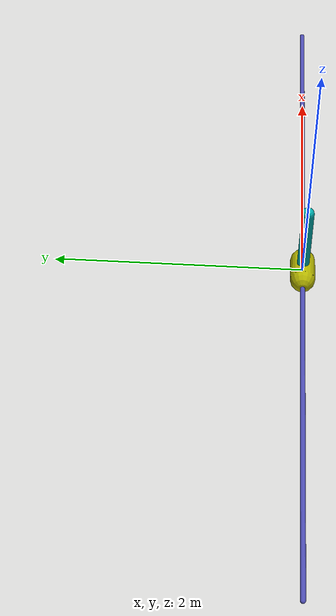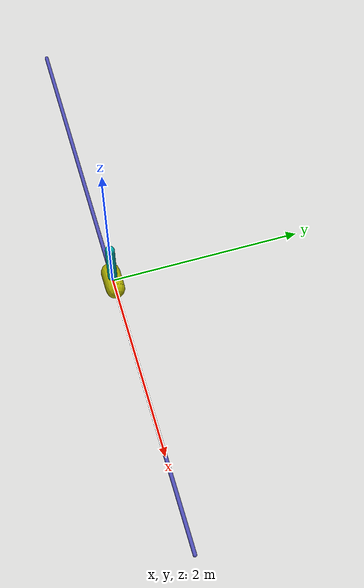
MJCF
<mujoco model="cartpole">
	<compiler inertiafromgeom="true" />
	<default>
		<joint armature="0" damping="1" limited="true" />
		<geom contype="0" friction="1 0.1 0.1" rgba="0.7 0.7 0 1" />
		<tendon />
		<motor ctrllimited="true" ctrlrange="-3 3" />
	</default>
    <asset>
		<texture builtin="checker" height="256" rgb1="1 1 1" rgb2="1 1 1" type="skybox" width="256" />
        <texture builtin="flat" height="1278" mark="cross" markrgb="1 1 1" name="texgeom" random="0.01" rgb1="0.8 0.6 0.4" rgb2="0.8 0.6 0.4" type="cube" width="127" />
		<texture builtin="checker" height="100" name="texplane" rgb1=".5 .5 .5" rgb2=".5 .5 .5" type="2d" width="100" />
        <texture builtin="checker" height="100" name="texplane_show" rgb1="0 0 0" rgb2="0.9 0.9 0.9" type="2d" width="100" />
        <material name="MatPlane" reflectance="0.5" shininess="1" specular="1" texrepeat="30 30" texture="texplane" />
        <material name="geom" texture="texgeom" texuniform="true" />
 	</asset>
	<option gravity="0 0 -9.81" integrator="RK4" timestep="0.02" />
	<size nstack="3000" />
	<worldbody>
		<geom name="rail" pos="0 0 0" quat="0.707 0 0.707 0" rgba="0.3 0.3 0.7 1" size="0.02 3" type="capsule" />
		<body name="cart" pos="0 0 0">
			<joint axis="1 0 0" limited="true" name="slider" pos="0 0 0" range="-2.5 2.5" type="slide" />
			<geom name="cart" pos="0 0 0" quat="0.707 0 0.707 0" size="0.1 0.1" type="capsule" />
			<body name="pole" pos="0 0 0">
				<joint axis="0 1 0" limited="false" name="hinge" pos="0 0 0" range="-180 180" type="hinge" />
				<geom fromto="0 0 0 0.001 0 0.645" name="cpole" rgba="0 0.7 0.7 1" size="0.049 0.3" type="capsule" />
			</body>
		</body>
	</worldbody>
	<actuator>
		<motor gear="100" joint="slider" name="slide" />
	</actuator>
</mujoco>
